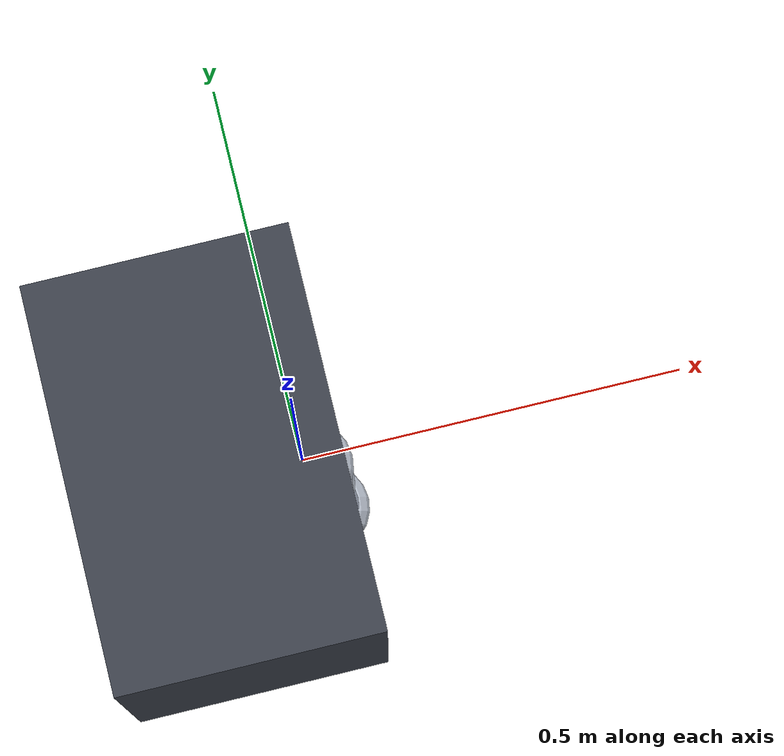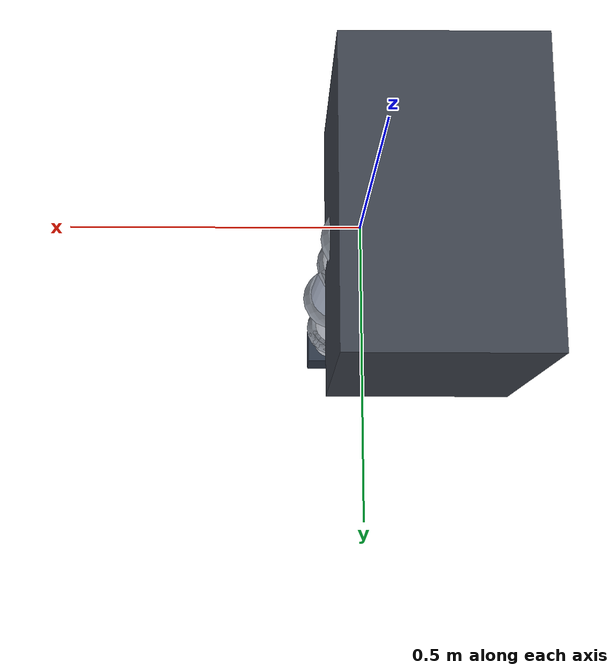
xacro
<?xml version="1.0"?>
<robot xmlns:xacro="http://www.ros.org/wiki/xacro" name="g2_right_arm">
  <xacro:macro name="inertial_small">
    <inertial><mass value="0.5"/><origin xyz="0 0 0"/><inertia ixx="0.002" ixy="0" ixz="0" iyy="0.002" iyz="0" izz="0.002"/></inertial>
  </xacro:macro>
  <xacro:macro name="joint_visual" params="color:='0.72 0.75 0.80 1'">
    <visual><geometry><sphere radius="0.065"/></geometry><material name="joint_color"><color rgba="${color}"/></material></visual>
  </xacro:macro>
  <xacro:macro name="joint_ball" params="color:='0.72 0.75 0.80 1'">
    <xacro:joint_visual color="${color}"/>
    <collision><geometry><sphere radius="0.060"/></geometry></collision>
    <xacro:inertial_small/>
  </xacro:macro>

  <link name="arm_base_link">
    <visual><origin xyz="-0.12 0 0"/><geometry><box size="0.34 0.52 0.45"/></geometry><material name="body"><color rgba="0.24 0.26 0.30 1"/></material></visual>
    <collision><origin xyz="-0.12 0 0"/><geometry><box size="0.34 0.52 0.45"/></geometry></collision>
  </link>

  <link name="arm_r_link1">
    <xacro:joint_ball/>
    <collision><origin xyz="0 0 0.08725" rpy="0 0 0"/><geometry><cylinder radius=".052" length=".1745"/></geometry></collision>
    <!-- 杆件必须挂在上游关节：连接 joint1→2，不随 joint2 自转。 -->
    <visual><origin xyz="0 0 0.08725"/><geometry><cylinder radius="0.055" length="0.1745"/></geometry><material name="arm"><color rgba="0.86 0.88 0.92 1"/></material></visual>
  </link>
  <joint name="idx61_arm_r_joint1" type="revolute">
    <parent link="arm_base_link"/><child link="arm_r_link1"/>
    <origin xyz="0 0 -0.069" rpy="${pi} 0 0"/><axis xyz="0 0 1"/>
    <limit lower="-3.1067" upper="3.1067" effort="108" velocity="3.1416"/>
  </joint>
  <link name="arm_r_link2">
    <xacro:joint_ball/>
  </link>
  <joint name="idx62_arm_r_joint2" type="revolute">
    <parent link="arm_r_link1"/><child link="arm_r_link2"/>
    <origin xyz="0 0 0.1745" rpy="${pi/2} 0 0"/><axis xyz="0 0 1"/>
    <limit lower="-2.0944" upper="2.0944" effort="108" velocity="3.1416"/>
  </joint>
  <link name="arm_r_link3">
    <xacro:joint_ball/>
    <collision><origin xyz="0.009 0 0.1435" rpy="0 0.06264 0"/><geometry><cylinder radius=".050" length=".287564"/></geometry></collision>
    <!-- joint3 -> joint4 = (0.018, 0, 0.287)。 -->
    <visual><origin xyz="0.009 0 0.1435" rpy="0 0.06264 0"/><geometry><cylinder radius="0.052" length="0.287564"/></geometry><material name="arm2"><color rgba="0.72 0.76 0.84 1"/></material></visual>
  </link>
  <joint name="idx63_arm_r_joint3" type="revolute">
    <parent link="arm_r_link2"/><child link="arm_r_link3"/>
    <origin xyz="0 0 0" rpy="${-pi/2} 0 0"/><axis xyz="0 0 1"/>
    <limit lower="-3.1067" upper="3.1067" effort="36" velocity="3.1416"/>
  </joint>
  <link name="arm_r_link4">
    <xacro:joint_ball/>
  </link>
  <joint name="idx64_arm_r_joint4" type="revolute">
    <parent link="arm_r_link3"/><child link="arm_r_link4"/>
    <origin xyz="0.018 0 0.287" rpy="${pi/2} 0 0"/><axis xyz="0 0 1"/>
    <limit lower="-2.5307" upper="1.0472" effort="36" velocity="3.1416"/>
  </joint>
  <link name="arm_r_link5">
    <xacro:joint_ball/>
    <collision><origin xyz="0 0 .157" rpy="0 0 0"/><geometry><cylinder radius=".044" length=".314"/></geometry></collision>
    <!-- visual 连接 joint5 到 joint6。 -->
    <visual><origin xyz="0 0 0.157"/><geometry><cylinder radius="0.046" length="0.314"/></geometry><material name="arm3"><color rgba="0.86 0.88 0.92 1"/></material></visual>
  </link>
  <joint name="idx65_arm_r_joint5" type="revolute">
    <parent link="arm_r_link4"/><child link="arm_r_link5"/>
    <origin xyz="-0.018 0 0" rpy="${-pi/2} 0 0"/><axis xyz="0 0 1"/>
    <limit lower="-3.1067" upper="3.1067" effort="18" velocity="3.1416"/>
  </joint>
  <link name="arm_r_link6">
    <xacro:joint_ball/>
  </link>
  <joint name="idx66_arm_r_joint6" type="revolute">
    <parent link="arm_r_link5"/><child link="arm_r_link6"/>
    <origin xyz="0 0 0.314" rpy="${pi/2} 0 0"/><axis xyz="0 0 1"/>
    <limit lower="-1.0472" upper="1.0472" effort="18" velocity="3.1416"/>
  </joint>
  <link name="arm_r_link7">
    <xacro:joint_ball/>
    <!-- visual 连接 joint7 到 gripper_r_center_link，圆柱默认沿 Z，绕 Y 转到 X。 -->
    <visual><origin xyz="0.118225 0 0" rpy="0 ${pi/2} 0"/><geometry><cylinder radius="0.040" length="0.23645"/></geometry><material name="arm"><color rgba="0.86 0.88 0.92 1"/></material></visual>
  </link>
  <joint name="idx67_arm_r_joint7" type="revolute">
    <parent link="arm_r_link6"/><child link="arm_r_link7"/>
    <origin xyz="0 0 0" rpy="${pi/2} 0 ${pi/2}"/><axis xyz="0 0 1"/>
    <limit lower="-1.5708" upper="1.5708" effort="18" velocity="3.1416"/>
  </joint>
  <link name="gripper_r_center_link">
    <visual><origin xyz="0 0 0"/><geometry><box size="0.11 0.10 0.12"/></geometry><material name="gripper"><color rgba="0.18 0.22 0.28 1"/></material></visual>
    <collision><origin xyz="0 0 -0.0975"/><geometry><box size="0.11 0.065 0.085"/></geometry></collision>
    <!-- 第九章 USD 标定的开合扫掠包络；含指间空隙以保守避障。 -->
    <collision><origin xyz="0 0 -0.024"/><geometry><box size="0.140 0.062 0.072"/></geometry></collision><xacro:inertial_small/>
  </link>
  <joint name="gripper_r_center_joint" type="fixed">
    <parent link="arm_r_link7"/><child link="gripper_r_center_link"/>
    <origin xyz="0.23645 0 0" rpy="${pi} ${-pi/2} 0"/>
  </joint>
</robot>
